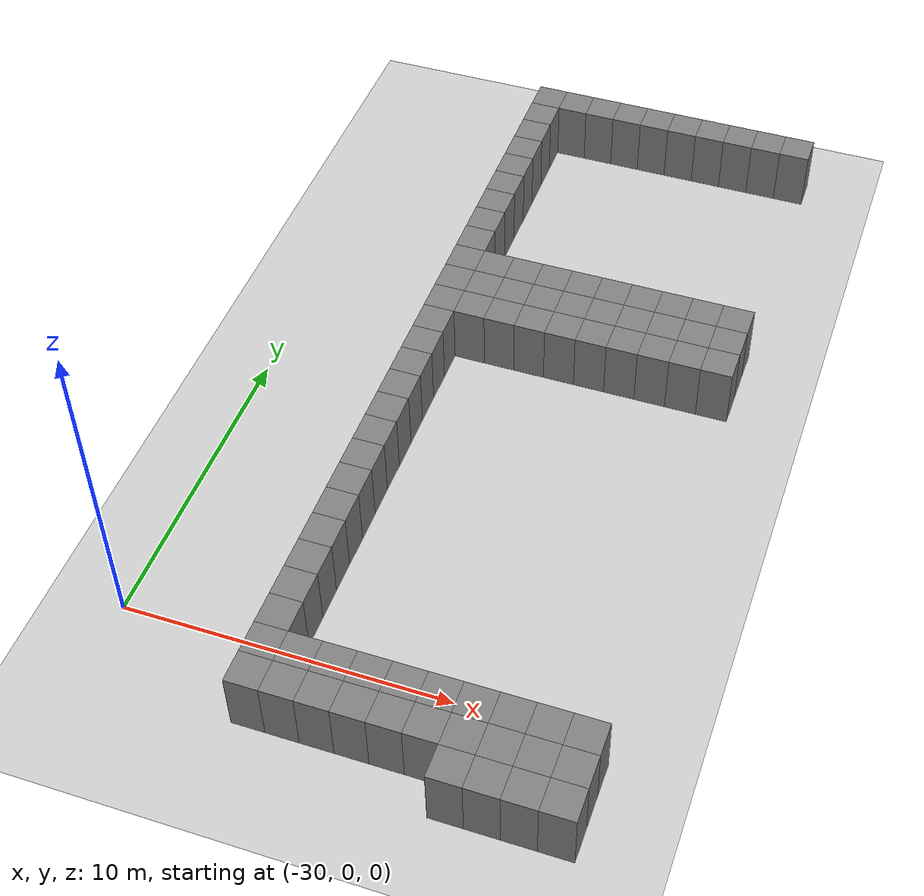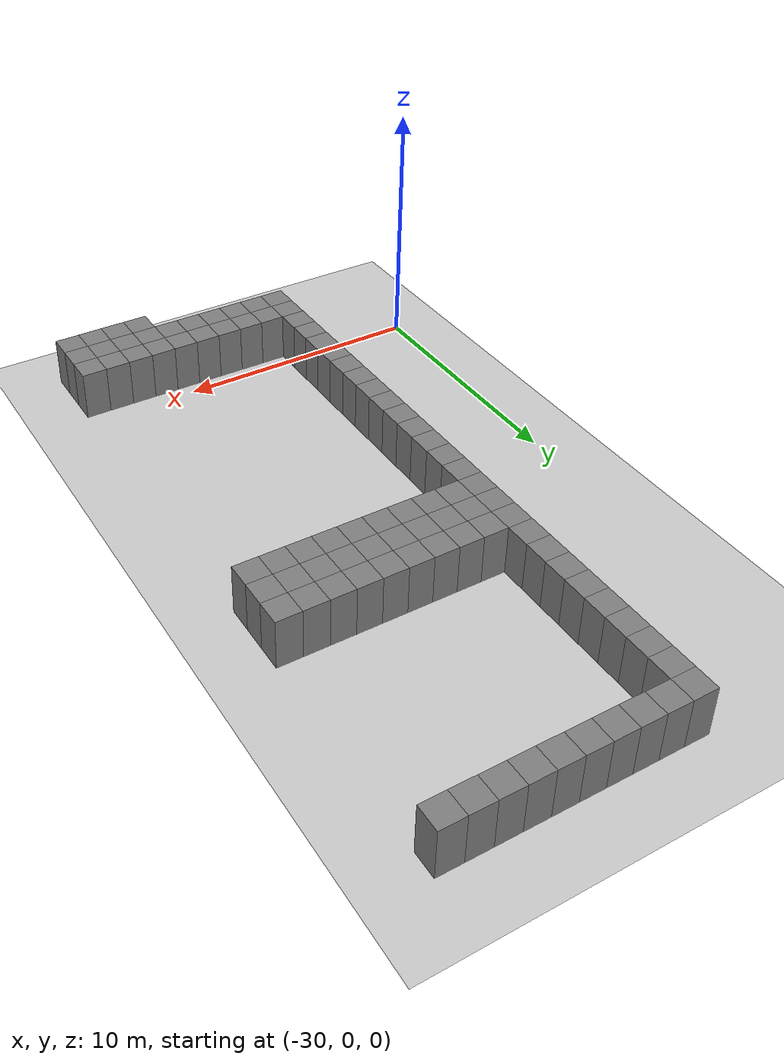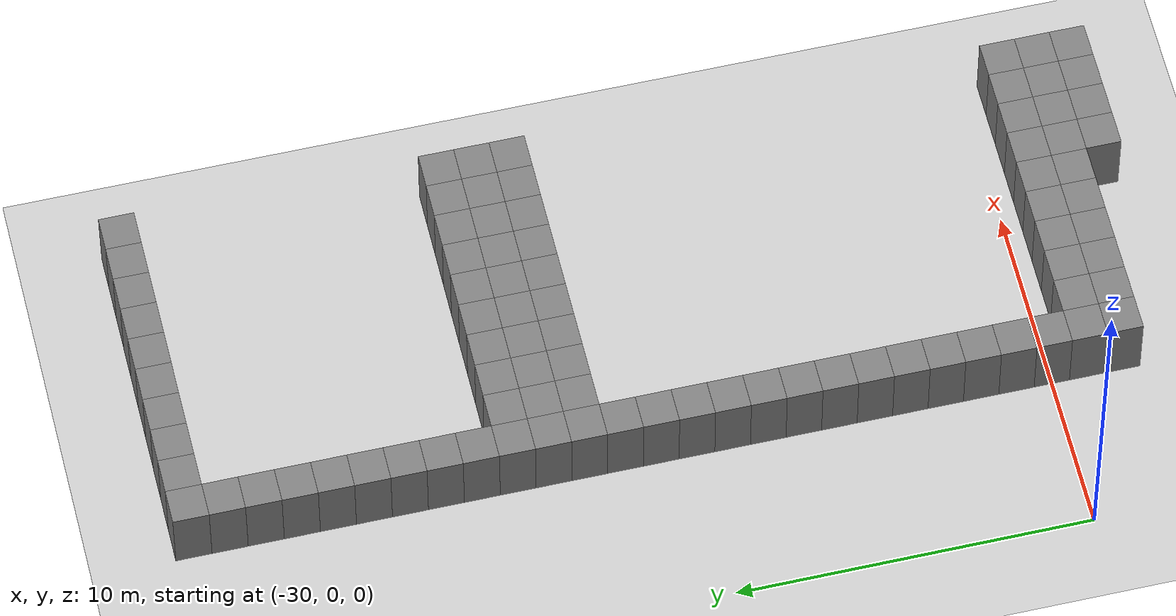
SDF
<sdf version="1.9">
 <world name="grid_world">
  <model name="ground_plane">
   <static>true</static>
   <link name="link">
    <collision name="collision">
     <geometry><plane><normal>0 0 1</normal><size>100 100</size></plane></geometry>
    </collision>
    <visual name="visual">
     <geometry><plane><normal>0 0 1</normal><size>100 100</size></plane></geometry>
     <material>
      <ambient>0.8 0.8 0.8 1</ambient>
      <diffuse>0.8 0.8 0.8 1</diffuse>
      <specular>0.8 0.8 0.8 1</specular>
     </material>
    </visual>
   </link>
  </model>
  <model name="wall_22_6">
   <static>true</static>
   <pose>-19 -3 1 0 0 0</pose>
   <link name="link">
    <collision name="collision"><geometry><box><size>1 1 2</size></box></geometry></collision>
    <visual name="visual">
     <geometry><box><size>1 1 2</size></box></geometry>
     <material>
      <ambient>0.5 0.5 0.5 1</ambient>
      <diffuse>0.5 0.5 0.5 1</diffuse>
      <specular>0.5 0.5 0.5 1</specular>
     </material>
    </visual>
   </link>
  </model>
  <model name="wall_22_7">
   <static>true</static>
   <pose>-18 -3 1 0 0 0</pose>
   <link name="link">
    <collision name="collision"><geometry><box><size>1 1 2</size></box></geometry></collision>
    <visual name="visual">
     <geometry><box><size>1 1 2</size></box></geometry>
     <material>
      <ambient>0.5 0.5 0.5 1</ambient>
      <diffuse>0.5 0.5 0.5 1</diffuse>
      <specular>0.5 0.5 0.5 1</specular>
     </material>
    </visual>
   </link>
  </model>
  <model name="wall_22_8">
   <static>true</static>
   <pose>-17 -3 1 0 0 0</pose>
   <link name="link">
    <collision name="collision"><geometry><box><size>1 1 2</size></box></geometry></collision>
    <visual name="visual">
     <geometry><box><size>1 1 2</size></box></geometry>
     <material>
      <ambient>0.5 0.5 0.5 1</ambient>
      <diffuse>0.5 0.5 0.5 1</diffuse>
      <specular>0.5 0.5 0.5 1</specular>
     </material>
    </visual>
   </link>
  </model>
  <model name="wall_22_9">
   <static>true</static>
   <pose>-16 -3 1 0 0 0</pose>
   <link name="link">
    <collision name="collision"><geometry><box><size>1 1 2</size></box></geometry></collision>
    <visual name="visual">
     <geometry><box><size>1 1 2</size></box></geometry>
     <material>
      <ambient>0.5 0.5 0.5 1</ambient>
      <diffuse>0.5 0.5 0.5 1</diffuse>
      <specular>0.5 0.5 0.5 1</specular>
     </material>
    </visual>
   </link>
  </model>
  <model name="wall_23_0">
   <static>true</static>
   <pose>-25 -2 1 0 0 0</pose>
   <link name="link">
    <collision name="collision"><geometry><box><size>1 1 2</size></box></geometry></collision>
    <visual name="visual">
     <geometry><box><size>1 1 2</size></box></geometry>
     <material>
      <ambient>0.5 0.5 0.5 1</ambient>
      <diffuse>0.5 0.5 0.5 1</diffuse>
      <specular>0.5 0.5 0.5 1</specular>
     </material>
    </visual>
   </link>
  </model>
  <model name="wall_23_1">
   <static>true</static>
   <pose>-24 -2 1 0 0 0</pose>
   <link name="link">
    <collision name="collision"><geometry><box><size>1 1 2</size></box></geometry></collision>
    <visual name="visual">
     <geometry><box><size>1 1 2</size></box></geometry>
     <material>
      <ambient>0.5 0.5 0.5 1</ambient>
      <diffuse>0.5 0.5 0.5 1</diffuse>
      <specular>0.5 0.5 0.5 1</specular>
     </material>
    </visual>
   </link>
  </model>
  <model name="wall_23_2">
   <static>true</static>
   <pose>-23 -2 1 0 0 0</pose>
   <link name="link">
    <collision name="collision"><geometry><box><size>1 1 2</size></box></geometry></collision>
    <visual name="visual">
     <geometry><box><size>1 1 2</size></box></geometry>
     <material>
      <ambient>0.5 0.5 0.5 1</ambient>
      <diffuse>0.5 0.5 0.5 1</diffuse>
      <specular>0.5 0.5 0.5 1</specular>
     </material>
    </visual>
   </link>
  </model>
  <model name="wall_23_3">
   <static>true</static>
   <pose>-22 -2 1 0 0 0</pose>
   <link name="link">
    <collision name="collision"><geometry><box><size>1 1 2</size></box></geometry></collision>
    <visual name="visual">
     <geometry><box><size>1 1 2</size></box></geometry>
     <material>
      <ambient>0.5 0.5 0.5 1</ambient>
      <diffuse>0.5 0.5 0.5 1</diffuse>
      <specular>0.5 0.5 0.5 1</specular>
     </material>
    </visual>
   </link>
  </model>
  <model name="wall_23_4">
   <static>true</static>
   <pose>-21 -2 1 0 0 0</pose>
   <link name="link">
    <collision name="collision"><geometry><box><size>1 1 2</size></box></geometry></collision>
    <visual name="visual">
     <geometry><box><size>1 1 2</size></box></geometry>
     <material>
      <ambient>0.5 0.5 0.5 1</ambient>
      <diffuse>0.5 0.5 0.5 1</diffuse>
      <specular>0.5 0.5 0.5 1</specular>
     </material>
    </visual>
   </link>
  </model>
  <model name="wall_23_5">
   <static>true</static>
   <pose>-20 -2 1 0 0 0</pose>
   <link name="link">
    <collision name="collision"><geometry><box><size>1 1 2</size></box></geometry></collision>
    <visual name="visual">
     <geometry><box><size>1 1 2</size></box></geometry>
     <material>
      <ambient>0.5 0.5 0.5 1</ambient>
      <diffuse>0.5 0.5 0.5 1</diffuse>
      <specular>0.5 0.5 0.5 1</specular>
     </material>
    </visual>
   </link>
  </model>
  <model name="wall_23_6">
   <static>true</static>
   <pose>-19 -2 1 0 0 0</pose>
   <link name="link">
    <collision name="collision"><geometry><box><size>1 1 2</size></box></geometry></collision>
    <visual name="visual">
     <geometry><box><size>1 1 2</size></box></geometry>
     <material>
      <ambient>0.5 0.5 0.5 1</ambient>
      <diffuse>0.5 0.5 0.5 1</diffuse>
      <specular>0.5 0.5 0.5 1</specular>
     </material>
    </visual>
   </link>
  </model>
  <model name="wall_23_7">
   <static>true</static>
   <pose>-18 -2 1 0 0 0</pose>
   <link name="link">
    <collision name="collision"><geometry><box><size>1 1 2</size></box></geometry></collision>
    <visual name="visual">
     <geometry><box><size>1 1 2</size></box></geometry>
     <material>
      <ambient>0.5 0.5 0.5 1</ambient>
      <diffuse>0.5 0.5 0.5 1</diffuse>
      <specular>0.5 0.5 0.5 1</specular>
     </material>
    </visual>
   </link>
  </model>
  <model name="wall_23_8">
   <static>true</static>
   <pose>-17 -2 1 0 0 0</pose>
   <link name="link">
    <collision name="collision"><geometry><box><size>1 1 2</size></box></geometry></collision>
    <visual name="visual">
     <geometry><box><size>1 1 2</size></box></geometry>
     <material>
      <ambient>0.5 0.5 0.5 1</ambient>
      <diffuse>0.5 0.5 0.5 1</diffuse>
      <specular>0.5 0.5 0.5 1</specular>
     </material>
    </visual>
   </link>
  </model>
  <model name="wall_23_9">
   <static>true</static>
   <pose>-16 -2 1 0 0 0</pose>
   <link name="link">
    <collision name="collision"><geometry><box><size>1 1 2</size></box></geometry></collision>
    <visual name="visual">
     <geometry><box><size>1 1 2</size></box></geometry>
     <material>
      <ambient>0.5 0.5 0.5 1</ambient>
      <diffuse>0.5 0.5 0.5 1</diffuse>
      <specular>0.5 0.5 0.5 1</specular>
     </material>
    </visual>
   </link>
  </model>
  <model name="wall_24_0">
   <static>true</static>
   <pose>-25 -1 1 0 0 0</pose>
   <link name="link">
    <collision name="collision"><geometry><box><size>1 1 2</size></box></geometry></collision>
    <visual name="visual">
     <geometry><box><size>1 1 2</size></box></geometry>
     <material>
      <ambient>0.5 0.5 0.5 1</ambient>
      <diffuse>0.5 0.5 0.5 1</diffuse>
      <specular>0.5 0.5 0.5 1</specular>
     </material>
    </visual>
   </link>
  </model>
  <model name="wall_24_1">
   <static>true</static>
   <pose>-24 -1 1 0 0 0</pose>
   <link name="link">
    <collision name="collision"><geometry><box><size>1 1 2</size></box></geometry></collision>
    <visual name="visual">
     <geometry><box><size>1 1 2</size></box></geometry>
     <material>
      <ambient>0.5 0.5 0.5 1</ambient>
      <diffuse>0.5 0.5 0.5 1</diffuse>
      <specular>0.5 0.5 0.5 1</specular>
     </material>
    </visual>
   </link>
  </model>
  <model name="wall_24_2">
   <static>true</static>
   <pose>-23 -1 1 0 0 0</pose>
   <link name="link">
    <collision name="collision"><geometry><box><size>1 1 2</size></box></geometry></collision>
    <visual name="visual">
     <geometry><box><size>1 1 2</size></box></geometry>
     <material>
      <ambient>0.5 0.5 0.5 1</ambient>
      <diffuse>0.5 0.5 0.5 1</diffuse>
      <specular>0.5 0.5 0.5 1</specular>
     </material>
    </visual>
   </link>
  </model>
  <model name="wall_24_3">
   <static>true</static>
   <pose>-22 -1 1 0 0 0</pose>
   <link name="link">
    <collision name="collision"><geometry><box><size>1 1 2</size></box></geometry></collision>
    <visual name="visual">
     <geometry><box><size>1 1 2</size></box></geometry>
     <material>
      <ambient>0.5 0.5 0.5 1</ambient>
      <diffuse>0.5 0.5 0.5 1</diffuse>
      <specular>0.5 0.5 0.5 1</specular>
     </material>
    </visual>
   </link>
  </model>
  <model name="wall_24_4">
   <static>true</static>
   <pose>-21 -1 1 0 0 0</pose>
   <link name="link">
    <collision name="collision"><geometry><box><size>1 1 2</size></box></geometry></collision>
    <visual name="visual">
     <geometry><box><size>1 1 2</size></box></geometry>
     <material>
      <ambient>0.5 0.5 0.5 1</ambient>
      <diffuse>0.5 0.5 0.5 1</diffuse>
      <specular>0.5 0.5 0.5 1</specular>
     </material>
    </visual>
   </link>
  </model>
  <model name="wall_24_5">
   <static>true</static>
   <pose>-20 -1 1 0 0 0</pose>
   <link name="link">
    <collision name="collision"><geometry><box><size>1 1 2</size></box></geometry></collision>
    <visual name="visual">
     <geometry><box><size>1 1 2</size></box></geometry>
     <material>
      <ambient>0.5 0.5 0.5 1</ambient>
      <diffuse>0.5 0.5 0.5 1</diffuse>
      <specular>0.5 0.5 0.5 1</specular>
     </material>
    </visual>
   </link>
  </model>
  <model name="wall_24_6">
   <static>true</static>
   <pose>-19 -1 1 0 0 0</pose>
   <link name="link">
    <collision name="collision"><geometry><box><size>1 1 2</size></box></geometry></collision>
    <visual name="visual">
     <geometry><box><size>1 1 2</size></box></geometry>
     <material>
      <ambient>0.5 0.5 0.5 1</ambient>
      <diffuse>0.5 0.5 0.5 1</diffuse>
      <specular>0.5 0.5 0.5 1</specular>
     </material>
    </visual>
   </link>
  </model>
  <model name="wall_24_7">
   <static>true</static>
   <pose>-18 -1 1 0 0 0</pose>
   <link name="link">
    <collision name="collision"><geometry><box><size>1 1 2</size></box></geometry></collision>
    <visual name="visual">
     <geometry><box><size>1 1 2</size></box></geometry>
     <material>
      <ambient>0.5 0.5 0.5 1</ambient>
      <diffuse>0.5 0.5 0.5 1</diffuse>
      <specular>0.5 0.5 0.5 1</specular>
     </material>
    </visual>
   </link>
  </model>
  <model name="wall_24_8">
   <static>true</static>
   <pose>-17 -1 1 0 0 0</pose>
   <link name="link">
    <collision name="collision"><geometry><box><size>1 1 2</size></box></geometry></collision>
    <visual name="visual">
     <geometry><box><size>1 1 2</size></box></geometry>
     <material>
      <ambient>0.5 0.5 0.5 1</ambient>
      <diffuse>0.5 0.5 0.5 1</diffuse>
      <specular>0.5 0.5 0.5 1</specular>
     </material>
    </visual>
   </link>
  </model>
  <model name="wall_24_9">
   <static>true</static>
   <pose>-16 -1 1 0 0 0</pose>
   <link name="link">
    <collision name="collision"><geometry><box><size>1 1 2</size></box></geometry></collision>
    <visual name="visual">
     <geometry><box><size>1 1 2</size></box></geometry>
     <material>
      <ambient>0.5 0.5 0.5 1</ambient>
      <diffuse>0.5 0.5 0.5 1</diffuse>
      <specular>0.5 0.5 0.5 1</specular>
     </material>
    </visual>
   </link>
  </model>
  <model name="wall_25_0">
   <static>true</static>
   <pose>-25 0 1 0 0 0</pose>
   <link name="link">
    <collision name="collision"><geometry><box><size>1 1 2</size></box></geometry></collision>
    <visual name="visual">
     <geometry><box><size>1 1 2</size></box></geometry>
     <material>
      <ambient>0.5 0.5 0.5 1</ambient>
      <diffuse>0.5 0.5 0.5 1</diffuse>
      <specular>0.5 0.5 0.5 1</specular>
     </material>
    </visual>
   </link>
  </model>
  <model name="wall_26_0">
   <static>true</static>
   <pose>-25 1 1 0 0 0</pose>
   <link name="link">
    <collision name="collision"><geometry><box><size>1 1 2</size></box></geometry></collision>
    <visual name="visual">
     <geometry><box><size>1 1 2</size></box></geometry>
     <material>
      <ambient>0.5 0.5 0.5 1</ambient>
      <diffuse>0.5 0.5 0.5 1</diffuse>
      <specular>0.5 0.5 0.5 1</specular>
     </material>
    </visual>
   </link>
  </model>
  <model name="wall_27_0">
   <static>true</static>
   <pose>-25 2 1 0 0 0</pose>
   <link name="link">
    <collision name="collision"><geometry><box><size>1 1 2</size></box></geometry></collision>
    <visual name="visual">
     <geometry><box><size>1 1 2</size></box></geometry>
     <material>
      <ambient>0.5 0.5 0.5 1</ambient>
      <diffuse>0.5 0.5 0.5 1</diffuse>
      <specular>0.5 0.5 0.5 1</specular>
     </material>
    </visual>
   </link>
  </model>
  <model name="wall_28_0">
   <static>true</static>
   <pose>-25 3 1 0 0 0</pose>
   <link name="link">
    <collision name="collision"><geometry><box><size>1 1 2</size></box></geometry></collision>
    <visual name="visual">
     <geometry><box><size>1 1 2</size></box></geometry>
     <material>
      <ambient>0.5 0.5 0.5 1</ambient>
      <diffuse>0.5 0.5 0.5 1</diffuse>
      <specular>0.5 0.5 0.5 1</specular>
     </material>
    </visual>
   </link>
  </model>
  <model name="wall_29_0">
   <static>true</static>
   <pose>-25 4 1 0 0 0</pose>
   <link name="link">
    <collision name="collision"><geometry><box><size>1 1 2</size></box></geometry></collision>
    <visual name="visual">
     <geometry><box><size>1 1 2</size></box></geometry>
     <material>
      <ambient>0.5 0.5 0.5 1</ambient>
      <diffuse>0.5 0.5 0.5 1</diffuse>
      <specular>0.5 0.5 0.5 1</specular>
     </material>
    </visual>
   </link>
  </model>
  <model name="wall_30_0">
   <static>true</static>
   <pose>-25 5 1 0 0 0</pose>
   <link name="link">
    <collision name="collision"><geometry><box><size>1 1 2</size></box></geometry></collision>
    <visual name="visual">
     <geometry><box><size>1 1 2</size></box></geometry>
     <material>
      <ambient>0.5 0.5 0.5 1</ambient>
      <diffuse>0.5 0.5 0.5 1</diffuse>
      <specular>0.5 0.5 0.5 1</specular>
     </material>
    </visual>
   </link>
  </model>
  <model name="wall_31_0">
   <static>true</static>
   <pose>-25 6 1 0 0 0</pose>
   <link name="link">
    <collision name="collision"><geometry><box><size>1 1 2</size></box></geometry></collision>
    <visual name="visual">
     <geometry><box><size>1 1 2</size></box></geometry>
     <material>
      <ambient>0.5 0.5 0.5 1</ambient>
      <diffuse>0.5 0.5 0.5 1</diffuse>
      <specular>0.5 0.5 0.5 1</specular>
     </material>
    </visual>
   </link>
  </model>
  <model name="wall_32_0">
   <static>true</static>
   <pose>-25 7 1 0 0 0</pose>
   <link name="link">
    <collision name="collision"><geometry><box><size>1 1 2</size></box></geometry></collision>
    <visual name="visual">
     <geometry><box><size>1 1 2</size></box></geometry>
     <material>
      <ambient>0.5 0.5 0.5 1</ambient>
      <diffuse>0.5 0.5 0.5 1</diffuse>
      <specular>0.5 0.5 0.5 1</specular>
     </material>
    </visual>
   </link>
  </model>
  <model name="wall_33_0">
   <static>true</static>
   <pose>-25 8 1 0 0 0</pose>
   <link name="link">
    <collision name="collision"><geometry><box><size>1 1 2</size></box></geometry></collision>
    <visual name="visual">
     <geometry><box><size>1 1 2</size></box></geometry>
     <material>
      <ambient>0.5 0.5 0.5 1</ambient>
      <diffuse>0.5 0.5 0.5 1</diffuse>
      <specular>0.5 0.5 0.5 1</specular>
     </material>
    </visual>
   </link>
  </model>
  <model name="wall_34_0">
   <static>true</static>
   <pose>-25 9 1 0 0 0</pose>
   <link name="link">
    <collision name="collision"><geometry><box><size>1 1 2</size></box></geometry></collision>
    <visual name="visual">
     <geometry><box><size>1 1 2</size></box></geometry>
     <material>
      <ambient>0.5 0.5 0.5 1</ambient>
      <diffuse>0.5 0.5 0.5 1</diffuse>
      <specular>0.5 0.5 0.5 1</specular>
     </material>
    </visual>
   </link>
  </model>
  <model name="wall_35_0">
   <static>true</static>
   <pose>-25 10 1 0 0 0</pose>
   <link name="link">
    <collision name="collision"><geometry><box><size>1 1 2</size></box></geometry></collision>
    <visual name="visual">
     <geometry><box><size>1 1 2</size></box></geometry>
     <material>
      <ambient>0.5 0.5 0.5 1</ambient>
      <diffuse>0.5 0.5 0.5 1</diffuse>
      <specular>0.5 0.5 0.5 1</specular>
     </material>
    </visual>
   </link>
  </model>
  <model name="wall_36_0">
   <static>true</static>
   <pose>-25 11 1 0 0 0</pose>
   <link name="link">
    <collision name="collision"><geometry><box><size>1 1 2</size></box></geometry></collision>
    <visual name="visual">
     <geometry><box><size>1 1 2</size></box></geometry>
     <material>
      <ambient>0.5 0.5 0.5 1</ambient>
      <diffuse>0.5 0.5 0.5 1</diffuse>
      <specular>0.5 0.5 0.5 1</specular>
     </material>
    </visual>
   </link>
  </model>
  <model name="wall_37_0">
   <static>true</static>
   <pose>-25 12 1 0 0 0</pose>
   <link name="link">
    <collision name="collision"><geometry><box><size>1 1 2</size></box></geometry></collision>
    <visual name="visual">
     <geometry><box><size>1 1 2</size></box></geometry>
     <material>
      <ambient>0.5 0.5 0.5 1</ambient>
      <diffuse>0.5 0.5 0.5 1</diffuse>
      <specular>0.5 0.5 0.5 1</specular>
     </material>
    </visual>
   </link>
  </model>
  <model name="wall_38_0">
   <static>true</static>
   <pose>-25 13 1 0 0 0</pose>
   <link name="link">
    <collision name="collision"><geometry><box><size>1 1 2</size></box></geometry></collision>
    <visual name="visual">
     <geometry><box><size>1 1 2</size></box></geometry>
     <material>
      <ambient>0.5 0.5 0.5 1</ambient>
      <diffuse>0.5 0.5 0.5 1</diffuse>
      <specular>0.5 0.5 0.5 1</specular>
     </material>
    </visual>
   </link>
  </model>
  <model name="wall_38_1">
   <static>true</static>
   <pose>-24 13 1 0 0 0</pose>
   <link name="link">
    <collision name="collision"><geometry><box><size>1 1 2</size></box></geometry></collision>
    <visual name="visual">
     <geometry><box><size>1 1 2</size></box></geometry>
     <material>
      <ambient>0.5 0.5 0.5 1</ambient>
      <diffuse>0.5 0.5 0.5 1</diffuse>
      <specular>0.5 0.5 0.5 1</specular>
     </material>
    </visual>
   </link>
  </model>
  <model name="wall_38_2">
   <static>true</static>
   <pose>-23 13 1 0 0 0</pose>
   <link name="link">
    <collision name="collision"><geometry><box><size>1 1 2</size></box></geometry></collision>
    <visual name="visual">
     <geometry><box><size>1 1 2</size></box></geometry>
     <material>
      <ambient>0.5 0.5 0.5 1</ambient>
      <diffuse>0.5 0.5 0.5 1</diffuse>
      <specular>0.5 0.5 0.5 1</specular>
     </material>
    </visual>
   </link>
  </model>
  <model name="wall_38_3">
   <static>true</static>
   <pose>-22 13 1 0 0 0</pose>
   <link name="link">
    <collision name="collision"><geometry><box><size>1 1 2</size></box></geometry></collision>
    <visual name="visual">
     <geometry><box><size>1 1 2</size></box></geometry>
     <material>
      <ambient>0.5 0.5 0.5 1</ambient>
      <diffuse>0.5 0.5 0.5 1</diffuse>
      <specular>0.5 0.5 0.5 1</specular>
     </material>
    </visual>
   </link>
  </model>
  <model name="wall_38_4">
   <static>true</static>
   <pose>-21 13 1 0 0 0</pose>
   <link name="link">
    <collision name="collision"><geometry><box><size>1 1 2</size></box></geometry></collision>
    <visual name="visual">
     <geometry><box><size>1 1 2</size></box></geometry>
     <material>
      <ambient>0.5 0.5 0.5 1</ambient>
      <diffuse>0.5 0.5 0.5 1</diffuse>
      <specular>0.5 0.5 0.5 1</specular>
     </material>
    </visual>
   </link>
  </model>
  <model name="wall_38_5">
   <static>true</static>
   <pose>-20 13 1 0 0 0</pose>
   <link name="link">
    <collision name="collision"><geometry><box><size>1 1 2</size></box></geometry></collision>
    <visual name="visual">
     <geometry><box><size>1 1 2</size></box></geometry>
     <material>
      <ambient>0.5 0.5 0.5 1</ambient>
      <diffuse>0.5 0.5 0.5 1</diffuse>
      <specular>0.5 0.5 0.5 1</specular>
     </material>
    </visual>
   </link>
  </model>
  <model name="wall_38_6">
   <static>true</static>
   <pose>-19 13 1 0 0 0</pose>
   <link name="link">
    <collision name="collision"><geometry><box><size>1 1 2</size></box></geometry></collision>
    <visual name="visual">
     <geometry><box><size>1 1 2</size></box></geometry>
     <material>
      <ambient>0.5 0.5 0.5 1</ambient>
      <diffuse>0.5 0.5 0.5 1</diffuse>
      <specular>0.5 0.5 0.5 1</specular>
     </material>
    </visual>
   </link>
  </model>
  <model name="wall_38_7">
   <static>true</static>
   <pose>-18 13 1 0 0 0</pose>
   <link name="link">
    <collision name="collision"><geometry><box><size>1 1 2</size></box></geometry></collision>
    <visual name="visual">
     <geometry><box><size>1 1 2</size></box></geometry>
     <material>
      <ambient>0.5 0.5 0.5 1</ambient>
      <diffuse>0.5 0.5 0.5 1</diffuse>
      <specular>0.5 0.5 0.5 1</specular>
     </material>
    </visual>
   </link>
  </model>
  <model name="wall_38_8">
   <static>true</static>
   <pose>-17 13 1 0 0 0</pose>
   <link name="link">
    <collision name="collision"><geometry><box><size>1 1 2</size></box></geometry></collision>
    <visual name="visual">
     <geometry><box><size>1 1 2</size></box></geometry>
     <material>
      <ambient>0.5 0.5 0.5 1</ambient>
      <diffuse>0.5 0.5 0.5 1</diffuse>
      <specular>0.5 0.5 0.5 1</specular>
     </material>
    </visual>
   </link>
  </model>
  <model name="wall_38_9">
   <static>true</static>
   <pose>-16 13 1 0 0 0</pose>
   <link name="link">
    <collision name="collision"><geometry><box><size>1 1 2</size></box></geometry></collision>
    <visual name="visual">
     <geometry><box><size>1 1 2</size></box></geometry>
     <material>
      <ambient>0.5 0.5 0.5 1</ambient>
      <diffuse>0.5 0.5 0.5 1</diffuse>
      <specular>0.5 0.5 0.5 1</specular>
     </material>
    </visual>
   </link>
  </model>
  <model name="wall_39_0">
   <static>true</static>
   <pose>-25 14 1 0 0 0</pose>
   <link name="link">
    <collision name="collision"><geometry><box><size>1 1 2</size></box></geometry></collision>
    <visual name="visual">
     <geometry><box><size>1 1 2</size></box></geometry>
     <material>
      <ambient>0.5 0.5 0.5 1</ambient>
      <diffuse>0.5 0.5 0.5 1</diffuse>
      <specular>0.5 0.5 0.5 1</specular>
     </material>
    </visual>
   </link>
  </model>
  <model name="wall_39_1">
   <static>true</static>
   <pose>-24 14 1 0 0 0</pose>
   <link name="link">
    <collision name="collision"><geometry><box><size>1 1 2</size></box></geometry></collision>
    <visual name="visual">
     <geometry><box><size>1 1 2</size></box></geometry>
     <material>
      <ambient>0.5 0.5 0.5 1</ambient>
      <diffuse>0.5 0.5 0.5 1</diffuse>
      <specular>0.5 0.5 0.5 1</specular>
     </material>
    </visual>
   </link>
  </model>
  <model name="wall_39_2">
   <static>true</static>
   <pose>-23 14 1 0 0 0</pose>
   <link name="link">
    <collision name="collision"><geometry><box><size>1 1 2</size></box></geometry></collision>
    <visual name="visual">
     <geometry><box><size>1 1 2</size></box></geometry>
     <material>
      <ambient>0.5 0.5 0.5 1</ambient>
      <diffuse>0.5 0.5 0.5 1</diffuse>
      <specular>0.5 0.5 0.5 1</specular>
     </material>
    </visual>
   </link>
  </model>
  <model name="wall_39_3">
   <static>true</static>
   <pose>-22 14 1 0 0 0</pose>
   <link name="link">
    <collision name="collision"><geometry><box><size>1 1 2</size></box></geometry></collision>
    <visual name="visual">
     <geometry><box><size>1 1 2</size></box></geometry>
     <material>
      <ambient>0.5 0.5 0.5 1</ambient>
      <diffuse>0.5 0.5 0.5 1</diffuse>
      <specular>0.5 0.5 0.5 1</specular>
     </material>
    </visual>
   </link>
  </model>
  <model name="wall_39_4">
   <static>true</static>
   <pose>-21 14 1 0 0 0</pose>
   <link name="link">
    <collision name="collision"><geometry><box><size>1 1 2</size></box></geometry></collision>
    <visual name="visual">
     <geometry><box><size>1 1 2</size></box></geometry>
     <material>
      <ambient>0.5 0.5 0.5 1</ambient>
      <diffuse>0.5 0.5 0.5 1</diffuse>
      <specular>0.5 0.5 0.5 1</specular>
     </material>
    </visual>
   </link>
  </model>
  <model name="wall_39_5">
   <static>true</static>
   <pose>-20 14 1 0 0 0</pose>
   <link name="link">
    <collision name="collision"><geometry><box><size>1 1 2</size></box></geometry></collision>
    <visual name="visual">
     <geometry><box><size>1 1 2</size></box></geometry>
     <material>
      <ambient>0.5 0.5 0.5 1</ambient>
      <diffuse>0.5 0.5 0.5 1</diffuse>
      <specular>0.5 0.5 0.5 1</specular>
     </material>
    </visual>
   </link>
  </model>
  <model name="wall_39_6">
   <static>true</static>
   <pose>-19 14 1 0 0 0</pose>
   <link name="link">
    <collision name="collision"><geometry><box><size>1 1 2</size></box></geometry></collision>
    <visual name="visual">
     <geometry><box><size>1 1 2</size></box></geometry>
     <material>
      <ambient>0.5 0.5 0.5 1</ambient>
      <diffuse>0.5 0.5 0.5 1</diffuse>
      <specular>0.5 0.5 0.5 1</specular>
     </material>
    </visual>
   </link>
  </model>
  <model name="wall_39_7">
   <static>true</static>
   <pose>-18 14 1 0 0 0</pose>
   <link name="link">
    <collision name="collision"><geometry><box><size>1 1 2</size></box></geometry></collision>
    <visual name="visual">
     <geometry><box><size>1 1 2</size></box></geometry>
     <material>
      <ambient>0.5 0.5 0.5 1</ambient>
      <diffuse>0.5 0.5 0.5 1</diffuse>
      <specular>0.5 0.5 0.5 1</specular>
     </material>
    </visual>
   </link>
  </model>
  <model name="wall_39_8">
   <static>true</static>
   <pose>-17 14 1 0 0 0</pose>
   <link name="link">
    <collision name="collision"><geometry><box><size>1 1 2</size></box></geometry></collision>
    <visual name="visual">
     <geometry><box><size>1 1 2</size></box></geometry>
     <material>
      <ambient>0.5 0.5 0.5 1</ambient>
      <diffuse>0.5 0.5 0.5 1</diffuse>
      <specular>0.5 0.5 0.5 1</specular>
     </material>
    </visual>
   </link>
  </model>
  <model name="wall_39_9">
   <static>true</static>
   <pose>-16 14 1 0 0 0</pose>
   <link name="link">
    <collision name="collision"><geometry><box><size>1 1 2</size></box></geometry></collision>
    <visual name="visual">
     <geometry><box><size>1 1 2</size></box></geometry>
     <material>
      <ambient>0.5 0.5 0.5 1</ambient>
      <diffuse>0.5 0.5 0.5 1</diffuse>
      <specular>0.5 0.5 0.5 1</specular>
     </material>
    </visual>
   </link>
  </model>
  <model name="wall_40_0">
   <static>true</static>
   <pose>-25 15 1 0 0 0</pose>
   <link name="link">
    <collision name="collision"><geometry><box><size>1 1 2</size></box></geometry></collision>
    <visual name="visual">
     <geometry><box><size>1 1 2</size></box></geometry>
     <material>
      <ambient>0.5 0.5 0.5 1</ambient>
      <diffuse>0.5 0.5 0.5 1</diffuse>
      <specular>0.5 0.5 0.5 1</specular>
     </material>
    </visual>
   </link>
  </model>
  <model name="wall_40_1">
   <static>true</static>
   <pose>-24 15 1 0 0 0</pose>
   <link name="link">
    <collision name="collision"><geometry><box><size>1 1 2</size></box></geometry></collision>
    <visual name="visual">
     <geometry><box><size>1 1 2</size></box></geometry>
     <material>
      <ambient>0.5 0.5 0.5 1</ambient>
      <diffuse>0.5 0.5 0.5 1</diffuse>
      <specular>0.5 0.5 0.5 1</specular>
     </material>
    </visual>
   </link>
  </model>
  <model name="wall_40_2">
   <static>true</static>
   <pose>-23 15 1 0 0 0</pose>
   <link name="link">
    <collision name="collision"><geometry><box><size>1 1 2</size></box></geometry></collision>
    <visual name="visual">
     <geometry><box><size>1 1 2</size></box></geometry>
     <material>
      <ambient>0.5 0.5 0.5 1</ambient>
      <diffuse>0.5 0.5 0.5 1</diffuse>
      <specular>0.5 0.5 0.5 1</specular>
     </material>
    </visual>
   </link>
  </model>
  <model name="wall_40_3">
   <static>true</static>
   <pose>-22 15 1 0 0 0</pose>
   <link name="link">
    <collision name="collision"><geometry><box><size>1 1 2</size></box></geometry></collision>
    <visual name="visual">
     <geometry><box><size>1 1 2</size></box></geometry>
     <material>
      <ambient>0.5 0.5 0.5 1</ambient>
      <diffuse>0.5 0.5 0.5 1</diffuse>
      <specular>0.5 0.5 0.5 1</specular>
     </material>
    </visual>
   </link>
  </model>
  <model name="wall_40_4">
   <static>true</static>
   <pose>-21 15 1 0 0 0</pose>
   <link name="link">
    <collision name="collision"><geometry><box><size>1 1 2</size></box></geometry></collision>
    <visual name="visual">
     <geometry><box><size>1 1 2</size></box></geometry>
     <material>
      <ambient>0.5 0.5 0.5 1</ambient>
      <diffuse>0.5 0.5 0.5 1</diffuse>
      <specular>0.5 0.5 0.5 1</specular>
     </material>
    </visual>
   </link>
  </model>
  <model name="wall_40_5">
   <static>true</static>
   <pose>-20 15 1 0 0 0</pose>
   <link name="link">
    <collision name="collision"><geometry><box><size>1 1 2</size></box></geometry></collision>
    <visual name="visual">
     <geometry><box><size>1 1 2</size></box></geometry>
     <material>
      <ambient>0.5 0.5 0.5 1</ambient>
      <diffuse>0.5 0.5 0.5 1</diffuse>
      <specular>0.5 0.5 0.5 1</specular>
     </material>
    </visual>
   </link>
  </model>
  <model name="wall_40_6">
   <static>true</static>
   <pose>-19 15 1 0 0 0</pose>
   <link name="link">
    <collision name="collision"><geometry><box><size>1 1 2</size></box></geometry></collision>
    <visual name="visual">
     <geometry><box><size>1 1 2</size></box></geometry>
     <material>
      <ambient>0.5 0.5 0.5 1</ambient>
      <diffuse>0.5 0.5 0.5 1</diffuse>
      <specular>0.5 0.5 0.5 1</specular>
     </material>
    </visual>
   </link>
  </model>
  <model name="wall_40_7">
   <static>true</static>
   <pose>-18 15 1 0 0 0</pose>
   <link name="link">
    <collision name="collision"><geometry><box><size>1 1 2</size></box></geometry></collision>
    <visual name="visual">
     <geometry><box><size>1 1 2</size></box></geometry>
     <material>
      <ambient>0.5 0.5 0.5 1</ambient>
      <diffuse>0.5 0.5 0.5 1</diffuse>
      <specular>0.5 0.5 0.5 1</specular>
     </material>
    </visual>
   </link>
  </model>
  <model name="wall_40_8">
   <static>true</static>
   <pose>-17 15 1 0 0 0</pose>
   <link name="link">
    <collision name="collision"><geometry><box><size>1 1 2</size></box></geometry></collision>
    <visual name="visual">
     <geometry><box><size>1 1 2</size></box></geometry>
     <material>
      <ambient>0.5 0.5 0.5 1</ambient>
      <diffuse>0.5 0.5 0.5 1</diffuse>
      <specular>0.5 0.5 0.5 1</specular>
     </material>
    </visual>
   </link>
  </model>
  <model name="wall_40_9">
   <static>true</static>
   <pose>-16 15 1 0 0 0</pose>
   <link name="link">
    <collision name="collision"><geometry><box><size>1 1 2</size></box></geometry></collision>
    <visual name="visual">
     <geometry><box><size>1 1 2</size></box></geometry>
     <material>
      <ambient>0.5 0.5 0.5 1</ambient>
      <diffuse>0.5 0.5 0.5 1</diffuse>
      <specular>0.5 0.5 0.5 1</specular>
     </material>
    </visual>
   </link>
  </model>
  <model name="wall_41_0">
   <static>true</static>
   <pose>-25 16 1 0 0 0</pose>
   <link name="link">
    <collision name="collision"><geometry><box><size>1 1 2</size></box></geometry></collision>
    <visual name="visual">
     <geometry><box><size>1 1 2</size></box></geometry>
     <material>
      <ambient>0.5 0.5 0.5 1</ambient>
      <diffuse>0.5 0.5 0.5 1</diffuse>
      <specular>0.5 0.5 0.5 1</specular>
     </material>
    </visual>
   </link>
  </model>
  <model name="wall_42_0">
   <static>true</static>
   <pose>-25 17 1 0 0 0</pose>
   <link name="link">
    <collision name="collision"><geometry><box><size>1 1 2</size></box></geometry></collision>
    <visual name="visual">
     <geometry><box><size>1 1 2</size></box></geometry>
     <material>
      <ambient>0.5 0.5 0.5 1</ambient>
      <diffuse>0.5 0.5 0.5 1</diffuse>
      <specular>0.5 0.5 0.5 1</specular>
     </material>
    </visual>
   </link>
  </model>
  <model name="wall_43_0">
   <static>true</static>
   <pose>-25 18 1 0 0 0</pose>
   <link name="link">
    <collision name="collision"><geometry><box><size>1 1 2</size></box></geometry></collision>
    <visual name="visual">
     <geometry><box><size>1 1 2</size></box></geometry>
     <material>
      <ambient>0.5 0.5 0.5 1</ambient>
      <diffuse>0.5 0.5 0.5 1</diffuse>
      <specular>0.5 0.5 0.5 1</specular>
     </material>
    </visual>
   </link>
  </model>
  <model name="wall_44_0">
   <static>true</static>
   <pose>-25 19 1 0 0 0</pose>
   <link name="link">
    <collision name="collision"><geometry><box><size>1 1 2</size></box></geometry></collision>
    <visual name="visual">
     <geometry><box><size>1 1 2</size></box></geometry>
     <material>
      <ambient>0.5 0.5 0.5 1</ambient>
      <diffuse>0.5 0.5 0.5 1</diffuse>
      <specular>0.5 0.5 0.5 1</specular>
     </material>
    </visual>
   </link>
  </model>
  <model name="wall_45_0">
   <static>true</static>
   <pose>-25 20 1 0 0 0</pose>
   <link name="link">
    <collision name="collision"><geometry><box><size>1 1 2</size></box></geometry></collision>
    <visual name="visual">
     <geometry><box><size>1 1 2</size></box></geometry>
     <material>
      <ambient>0.5 0.5 0.5 1</ambient>
      <diffuse>0.5 0.5 0.5 1</diffuse>
      <specular>0.5 0.5 0.5 1</specular>
     </material>
    </visual>
   </link>
  </model>
  <model name="wall_46_0">
   <static>true</static>
   <pose>-25 21 1 0 0 0</pose>
   <link name="link">
    <collision name="collision"><geometry><box><size>1 1 2</size></box></geometry></collision>
    <visual name="visual">
     <geometry><box><size>1 1 2</size></box></geometry>
     <material>
      <ambient>0.5 0.5 0.5 1</ambient>
      <diffuse>0.5 0.5 0.5 1</diffuse>
      <specular>0.5 0.5 0.5 1</specular>
     </material>
    </visual>
   </link>
  </model>
  <model name="wall_47_0">
   <static>true</static>
   <pose>-25 22 1 0 0 0</pose>
   <link name="link">
    <collision name="collision"><geometry><box><size>1 1 2</size></box></geometry></collision>
    <visual name="visual">
     <geometry><box><size>1 1 2</size></box></geometry>
     <material>
      <ambient>0.5 0.5 0.5 1</ambient>
      <diffuse>0.5 0.5 0.5 1</diffuse>
      <specular>0.5 0.5 0.5 1</specular>
     </material>
    </visual>
   </link>
  </model>
  <model name="wall_48_0">
   <static>true</static>
   <pose>-25 23 1 0 0 0</pose>
   <link name="link">
    <collision name="collision"><geometry><box><size>1 1 2</size></box></geometry></collision>
    <visual name="visual">
     <geometry><box><size>1 1 2</size></box></geometry>
     <material>
      <ambient>0.5 0.5 0.5 1</ambient>
      <diffuse>0.5 0.5 0.5 1</diffuse>
      <specular>0.5 0.5 0.5 1</specular>
     </material>
    </visual>
   </link>
  </model>
  <model name="wall_49_0">
   <static>true</static>
   <pose>-25 24 1 0 0 0</pose>
   <link name="link">
    <collision name="collision"><geometry><box><size>1 1 2</size></box></geometry></collision>
    <visual name="visual">
     <geometry><box><size>1 1 2</size></box></geometry>
     <material>
      <ambient>0.5 0.5 0.5 1</ambient>
      <diffuse>0.5 0.5 0.5 1</diffuse>
      <specular>0.5 0.5 0.5 1</specular>
     </material>
    </visual>
   </link>
  </model>
  <model name="wall_49_1">
   <static>true</static>
   <pose>-24 24 1 0 0 0</pose>
   <link name="link">
    <collision name="collision"><geometry><box><size>1 1 2</size></box></geometry></collision>
    <visual name="visual">
     <geometry><box><size>1 1 2</size></box></geometry>
     <material>
      <ambient>0.5 0.5 0.5 1</ambient>
      <diffuse>0.5 0.5 0.5 1</diffuse>
      <specular>0.5 0.5 0.5 1</specular>
     </material>
    </visual>
   </link>
  </model>
  <model name="wall_49_2">
   <static>true</static>
   <pose>-23 24 1 0 0 0</pose>
   <link name="link">
    <collision name="collision"><geometry><box><size>1 1 2</size></box></geometry></collision>
    <visual name="visual">
     <geometry><box><size>1 1 2</size></box></geometry>
     <material>
      <ambient>0.5 0.5 0.5 1</ambient>
      <diffuse>0.5 0.5 0.5 1</diffuse>
      <specular>0.5 0.5 0.5 1</specular>
     </material>
    </visual>
   </link>
  </model>
  <model name="wall_49_3">
   <static>true</static>
   <pose>-22 24 1 0 0 0</pose>
   <link name="link">
    <collision name="collision"><geometry><box><size>1 1 2</size></box></geometry></collision>
    <visual name="visual">
     <geometry><box><size>1 1 2</size></box></geometry>
     <material>
      <ambient>0.5 0.5 0.5 1</ambient>
      <diffuse>0.5 0.5 0.5 1</diffuse>
      <specular>0.5 0.5 0.5 1</specular>
     </material>
    </visual>
   </link>
  </model>
  <model name="wall_49_4">
   <static>true</static>
   <pose>-21 24 1 0 0 0</pose>
   <link name="link">
    <collision name="collision"><geometry><box><size>1 1 2</size></box></geometry></collision>
    <visual name="visual">
     <geometry><box><size>1 1 2</size></box></geometry>
     <material>
      <ambient>0.5 0.5 0.5 1</ambient>
      <diffuse>0.5 0.5 0.5 1</diffuse>
      <specular>0.5 0.5 0.5 1</specular>
     </material>
    </visual>
   </link>
  </model>
  <model name="wall_49_5">
   <static>true</static>
   <pose>-20 24 1 0 0 0</pose>
   <link name="link">
    <collision name="collision"><geometry><box><size>1 1 2</size></box></geometry></collision>
    <visual name="visual">
     <geometry><box><size>1 1 2</size></box></geometry>
     <material>
      <ambient>0.5 0.5 0.5 1</ambient>
      <diffuse>0.5 0.5 0.5 1</diffuse>
      <specular>0.5 0.5 0.5 1</specular>
     </material>
    </visual>
   </link>
  </model>
  <model name="wall_49_6">
   <static>true</static>
   <pose>-19 24 1 0 0 0</pose>
   <link name="link">
    <collision name="collision"><geometry><box><size>1 1 2</size></box></geometry></collision>
    <visual name="visual">
     <geometry><box><size>1 1 2</size></box></geometry>
     <material>
      <ambient>0.5 0.5 0.5 1</ambient>
      <diffuse>0.5 0.5 0.5 1</diffuse>
      <specular>0.5 0.5 0.5 1</specular>
     </material>
    </visual>
   </link>
  </model>
  <model name="wall_49_7">
   <static>true</static>
   <pose>-18 24 1 0 0 0</pose>
   <link name="link">
    <collision name="collision"><geometry><box><size>1 1 2</size></box></geometry></collision>
    <visual name="visual">
     <geometry><box><size>1 1 2</size></box></geometry>
     <material>
      <ambient>0.5 0.5 0.5 1</ambient>
      <diffuse>0.5 0.5 0.5 1</diffuse>
      <specular>0.5 0.5 0.5 1</specular>
     </material>
    </visual>
   </link>
  </model>
  <model name="wall_49_8">
   <static>true</static>
   <pose>-17 24 1 0 0 0</pose>
   <link name="link">
    <collision name="collision"><geometry><box><size>1 1 2</size></box></geometry></collision>
    <visual name="visual">
     <geometry><box><size>1 1 2</size></box></geometry>
     <material>
      <ambient>0.5 0.5 0.5 1</ambient>
      <diffuse>0.5 0.5 0.5 1</diffuse>
      <specular>0.5 0.5 0.5 1</specular>
     </material>
    </visual>
   </link>
  </model>
  <model name="wall_49_9">
   <static>true</static>
   <pose>-16 24 1 0 0 0</pose>
   <link name="link">
    <collision name="collision"><geometry><box><size>1 1 2</size></box></geometry></collision>
    <visual name="visual">
     <geometry><box><size>1 1 2</size></box></geometry>
     <material>
      <ambient>0.5 0.5 0.5 1</ambient>
      <diffuse>0.5 0.5 0.5 1</diffuse>
      <specular>0.5 0.5 0.5 1</specular>
     </material>
    </visual>
   </link>
  </model>
 </world>
</sdf>
